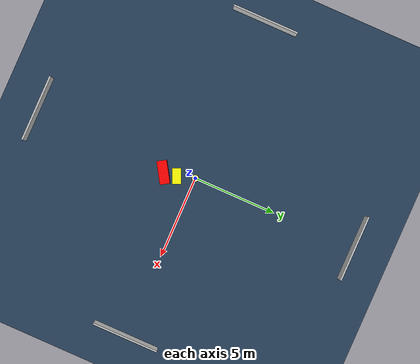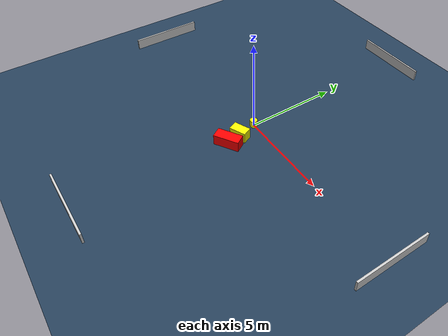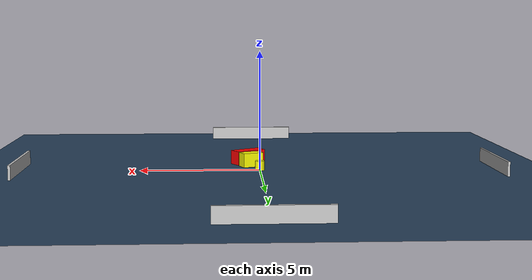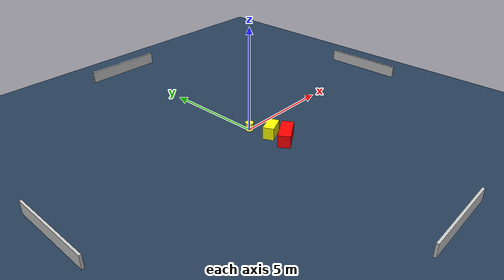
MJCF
<?xml version="1.0" ?>
<mujoco model="generated_environment">
  <option timestep="0.01" integrator="RK4" cone="elliptic"/>
  <default>
    <geom density="1"/>
  </default>
  <asset>
    <texture builtin="gradient" height="3072" name="skybox" rgb1="0.3 0.5 0.7" rgb2="0 0 0" type="skybox" width="512"/>
    <texture builtin="checker" height="300" name="groundplane" rgb1="0.2 0.3 0.4" rgb2="0.1 0.2 0.3" type="2d" width="300"/>
    <material name="groundplane" reflectance="0.2" texrepeat="5 5" texture="groundplane"/>
  </asset>
  <worldbody>
    <light dir="0 0 -1" directional="true" pos="0 0 1.5"/>
    <geom condim="3" friction="0.5 0.005 0.001" material="groundplane" name="floor" pos="0 0 0" size="0 0 0.05" type="plane"/>
    <body name="walls">
      <geom name="wall_1" condim="4" pos="-10.0 0.0 0.3" rgba="0.800000011920929 0.800000011920929 0.800000011920929 1.0" size="0.05 2.0 0.3" type="box"/>
      <geom name="wall_2" condim="4" pos="10.0 0.0 0.3" rgba="0.800000011920929 0.800000011920929 0.800000011920929 1.0" size="0.05 2.0 0.3" type="box"/>
      <geom name="wall_3" condim="4" pos="0.0 -10.0 0.3" rgba="0.800000011920929 0.800000011920929 0.800000011920929 1.0" size="2.0 0.05 0.3" type="box"/>
      <geom name="wall_4" condim="4" pos="0.0 10.0 0.3" rgba="0.800000011920929 0.800000011920929 0.800000011920929 1.0" size="2.0 0.05 0.3" type="box"/>
    </body>
    <body name="robot">
      <joint name="joint_x" type="slide" pos="0 0 0" axis="1 0 0"/>
      <joint name="joint_y" type="slide" pos="0 0 0" axis="0 1 0"/>
      <geom name="robot" type="cylinder" pos="0.0 0.0 0.2" size="0.2 0.2 0.0" mass="5.0" friction="1.0 0.005 0.0001" condim="4" rgba="1.0 1.0 0.0 1.0"/>
    </body>
    <body name="obstacle_1_movable">
      <geom name="obstacle_1_movable" condim="4" pos="0.31722731304049645 -1.0521272878302408 0.3" euler="0 0 293.46177954156786" friction="0.0 0.005 0.001" rgba="1.0 1.0 0.0 1.0" size="0.2586328932361782 0.45315248796454394 0.3" type="box" mass="0.1"/>
      <joint type="free"/>
    </body>
    <body name="obstacle_2_static">
      <geom name="obstacle_2_static" condim="4" pos="0.430857245086835 -1.833515964114848 0.3" euler="0 0 211.79929683028556" friction="0.0 0.005 0.001" rgba="1.0 0.0 0.0 1.0" size="0.6841538643632503 0.2921484224358048 0.3" type="box"/>
    </body>
  </worldbody>
  <actuator>
    <motor name="actuator_x" joint="joint_x" gear="1" ctrlrange="-1 1"/>
    <motor name="actuator_y" joint="joint_y" gear="1" ctrlrange="-1 1"/>
  </actuator>
</mujoco>
